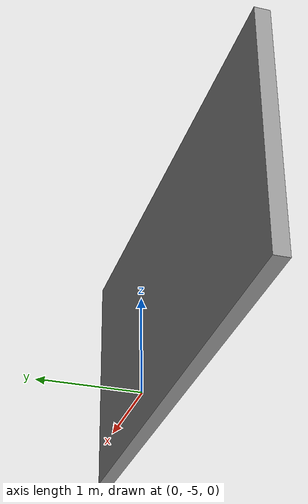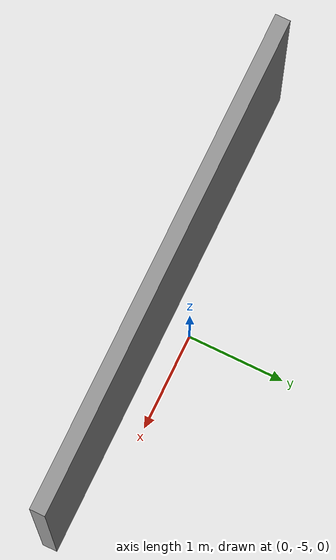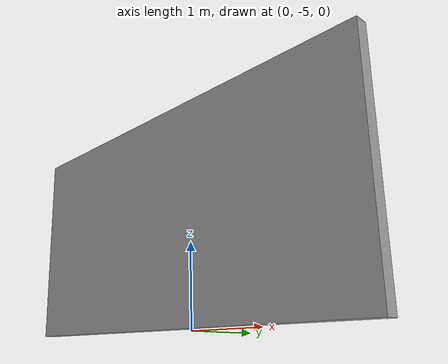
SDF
<?xml version='1.0'?>
<sdf version='1.6'>
  <model name='wall1'>
    <pose frame=''>-0.058264 -5.30919 0 0 -0 0</pose>
    <link name='Wall_5'>
      <collision name='Wall_5_Collision'>
        <geometry>
          <box>
            <size>5 0.15 2.5</size>
          </box>
        </geometry>
        <pose frame=''>0 0 1.25 0 -0 0</pose>
      </collision>
      <visual name='Wall_5_Visual'>
        <pose frame=''>0 0 1.25 0 -0 0</pose>
        <geometry>
          <box>
            <size>5 0.15 2.5</size>
          </box>
        </geometry>
        <material>
          <script>
            <uri>file://media/materials/scripts/gazebo.material</uri>
            <name>Gazebo/Grey</name>
          </script>
          <ambient>1 1 1 1</ambient>
        </material>
        <meta>
          <layer>0</layer>
        </meta>
      </visual>
      <pose frame=''>0 0 0 0 -0 0</pose>
    </link>
    <static>1</static>
  </model>
</sdf>
